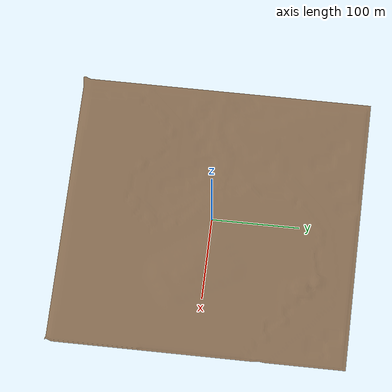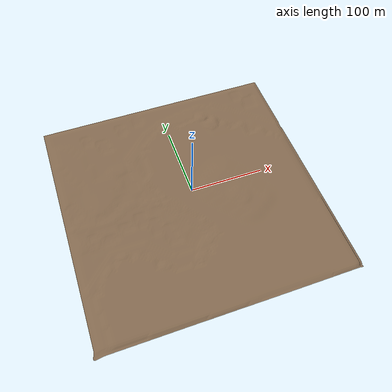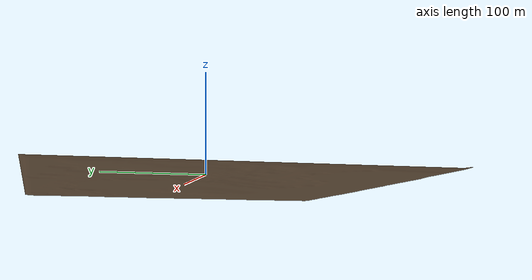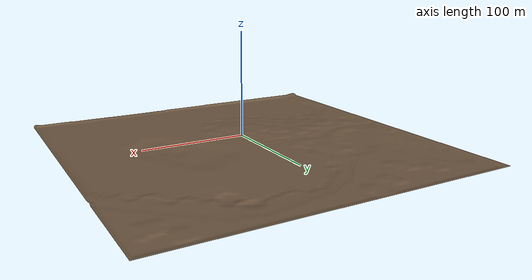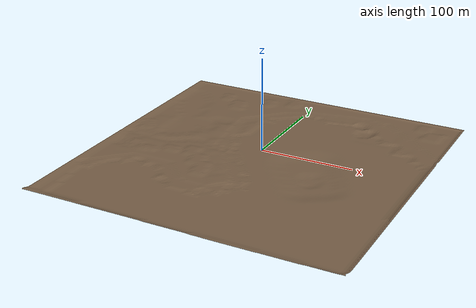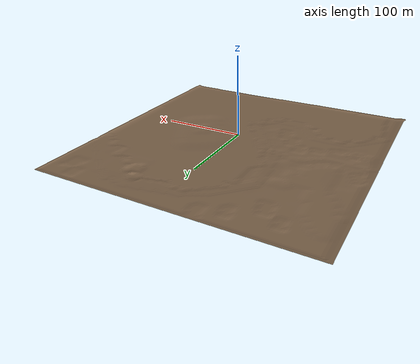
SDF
<?xml version="1.0" ?>
<sdf version="1.6">
  <model name="seabed">
    <static>true</static>
    <link name="seabed_link">
      <!-- Seafloor visual -->
      <visual name="seafloor">
        <pose>0 0 -10 0 0 0</pose>
        <geometry>
          <mesh>
            <uri>model://seabed/seabed.stl</uri>
            <scale>10 10 1</scale>
          </mesh>
        </geometry>
        <material>
          <ambient>0.3 0.2 0.1 1.0</ambient>
          <diffuse>0.5 0.4 0.3 1.0</diffuse>
          <specular>0.0 0.0 0.0 1.0</specular>
        </material>
      </visual>

      <!-- Seafloor collision -->
      <collision name="seafloor">
        <pose>0 0 -10 0 0 0</pose>
        <geometry>
          <mesh>
            <uri>model://seabed/seabed.stl</uri>
            <scale>10 10 1</scale>
          </mesh>
        </geometry>
      </collision>
    </link>
  </model>
</sdf>
